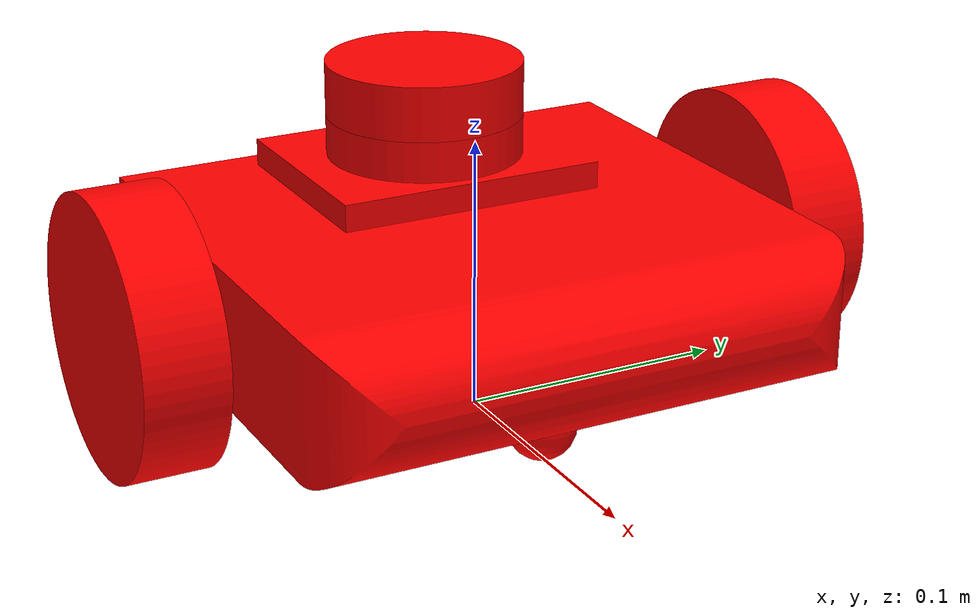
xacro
<?xml version="1.0" ?>
<robot name="ROS" xmlns:xacro="http://www.ros.org/wiki/xacro">

<xacro:include filename="$(find ROS_description)/urdf/materials.xacro" />
<xacro:include filename="$(find ROS_description)/urdf/ROS.trans" />
<xacro:include filename="$(find ROS_description)/urdf/ROS.gazebo" />
<link name="base_link">
  <inertial>
    <origin xyz="-0.004334391860998321 -0.0005636448423668676 0.05223478787909594" rpy="0 0 0"/>
    <mass value="2.107074069849857"/>
    <inertia ixx="0.007185" iyy="0.006854" izz="0.012877" ixy="3e-06" iyz="-3e-06" ixz="0.000201"/>
  </inertial>
  <visual>
    <origin xyz="0 0 0" rpy="0 0 0"/>
    <geometry>
      <mesh filename="file://$(find ROS_description)/meshes/base_link.stl" scale="0.001 0.001 0.001"/>
    </geometry>
    <material name="silver"/>
  </visual>
  <collision>
    <origin xyz="0 0 0" rpy="0 0 0"/>
    <geometry>
      <mesh filename="file://$(find ROS_description)/meshes/base_link.stl" scale="0.001 0.001 0.001"/>
    </geometry>
  </collision>
</link>

<link name="left_link_1">
  <inertial>
    <origin xyz="4.5070576519968403e-07 0.015000062845261536 6.938893903907228e-18" rpy="0 0 0"/>
    <mass value="1.8496126748009902"/>
    <inertia ixx="0.001295" iyy="0.002312" izz="0.001295" ixy="0.0" iyz="0.0" ixz="0.0"/>
  </inertial>
  <visual>
    <origin xyz="0.007669 -0.109356 -0.05" rpy="0 0 0"/>
    <geometry>
      <mesh filename="file://$(find ROS_description)/meshes/left_link_1.stl" scale="0.001 0.001 0.001"/>
    </geometry>
    <material name="silver"/>
  </visual>
  <collision>
    <origin xyz="0.007669 -0.109356 -0.05" rpy="0 0 0"/>
    <geometry>
      <mesh filename="file://$(find ROS_description)/meshes/left_link_1.stl" scale="0.001 0.001 0.001"/>
    </geometry>
  </collision>
</link>

<link name="right_link_1">
  <inertial>
    <origin xyz="4.5070576519968403e-07 -0.015000062845261564 6.938893903907228e-18" rpy="0 0 0"/>
    <mass value="1.8496126748009902"/>
    <inertia ixx="0.001295" iyy="0.002312" izz="0.001295" ixy="0.0" iyz="0.0" ixz="0.0"/>
  </inertial>
  <visual>
    <origin xyz="0.007669 0.109356 -0.05" rpy="0 0 0"/>
    <geometry>
      <mesh filename="file://$(find ROS_description)/meshes/right_link_1.stl" scale="0.001 0.001 0.001"/>
    </geometry>
    <material name="silver"/>
  </visual>
  <collision>
    <origin xyz="0.007669 0.109356 -0.05" rpy="0 0 0"/>
    <geometry>
      <mesh filename="file://$(find ROS_description)/meshes/right_link_1.stl" scale="0.001 0.001 0.001"/>
    </geometry>
  </collision>
</link>

<link name="lidar_1">
  <inertial>
    <origin xyz="-6.938893903907228e-18 -6.959162379954361e-18 0.009999999999999995" rpy="0 0 0"/>
    <mass value="0.08290663012823465"/>
    <inertia ixx="3e-05" iyy="3e-05" izz="5.4e-05" ixy="-0.0" iyz="-0.0" ixz="-0.0"/>
  </inertial>
  <visual>
    <origin xyz="0.04 -0.0 -0.1" rpy="0 0 0"/>
    <geometry>
      <mesh filename="file://$(find ROS_description)/meshes/lidar_1.stl" scale="0.001 0.001 0.001"/>
    </geometry>
    <material name="silver"/>
  </visual>
  <collision>
    <origin xyz="0.04 -0.0 -0.1" rpy="0 0 0"/>
    <geometry>
      <mesh filename="file://$(find ROS_description)/meshes/lidar_1.stl" scale="0.001 0.001 0.001"/>
    </geometry>
  </collision>
</link>

<joint name="wheel_left_joint" type="continuous">
  <origin xyz="-0.007669 0.109356 0.05" rpy="0 0 0"/>
  <parent link="base_link"/>
  <child link="left_link_1"/>
  <axis xyz="0.0 1.0 0.0"/>
</joint>

<joint name="wheel_right_joint" type="continuous">
  <origin xyz="-0.007669 -0.109356 0.05" rpy="0 0 0"/>
  <parent link="base_link"/>
  <child link="right_link_1"/>
  <axis xyz="0.0 -1.0 0.0"/>
</joint>

<joint name="lidar_joint" type="fixed">
  <origin xyz="-0.04 0.0 0.1" rpy="0 0 0"/>
  <parent link="base_link"/>
  <child link="lidar_1"/>
  <axis xyz="0.0 0.0 1.0"/>
</joint>

<gazebo>
    <plugin filename="libgazebo_ros_diff_drive.so" name="gazebo_base_controller">
      <odometry_frame>odom</odometry_frame>
      <commandTopic>cmd_vel</commandTopic>
      <publish_odom>true</publish_odom>
      <publish_odom_tf>true</publish_odom_tf>
      <update_rate>15.0</update_rate>

      <left_joint>wheel_left_joint</left_joint>
      <right_joint>wheel_right_joint</right_joint>

      <wheel_separation>0.5</wheel_separation>
      <wheel_diameter>0.3</wheel_diameter>
      <max_wheel_acceleration>0.7</max_wheel_acceleration>
      <max_wheel_torque>8</max_wheel_torque>
      <robotBaseFrame>base_link</robotBaseFrame>
    </plugin>
</gazebo>

<!--lidar plugin-->
    <gazebo reference="lidar_1">
      <sensor name="lidar_1" type="ray">
        <visualize>true</visualize>
        <update_rate>12.0</update_rate>
        <plugin filename="libgazebo_ros_ray_sensor.so" name="gazebo_lidar">
        <output_type>sensor_msgs/LaserScan</output_type>
        <frame_name>lidar</frame_name>
        </plugin>
        <ray>
          <scan>
            <horizontal>
              <samples>360</samples>
              <resolution>1</resolution>
              <min_angle>0.00</min_angle>
              <max_angle>3.14</max_angle>
            </horizontal>
          </scan>
          <range>
            <min>0.120</min>
            <max>3.5</max>
            <resolution>0.015</resolution>
          </range>
        </ray>
      </sensor>
    </gazebo>

</robot>

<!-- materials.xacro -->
<robot name="ROS" xmlns:xacro="http://www.ros.org/wiki/xacro" >

<material name="silver">
  <color rgba="1.0 0.0 0.0 1.000"/>
</material>
<material name="gold">
  <color rgba="0.0 0.16 1.0 1.000"/>
</material>

</robot>

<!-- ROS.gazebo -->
<robot name="ROS" xmlns:xacro="http://www.ros.org/wiki/xacro" >

<!-- Define individual colors for each link -->
<xacro:property name="base_link_color" value="Gazebo/Red" />
<xacro:property name="left_link_1_color" value="Gazebo/Blue" />
<xacro:property name="right_link_1_color" value="Gazebo/Blue" />
<xacro:property name="lidar_1_color" value="Gazebo/Yellow" />

<gazebo>
  <plugin name="control" filename="libgazebo_ros_control.so"/>
</gazebo>

<!-- Use the individual color for each link -->
<gazebo reference="base_link">
  <material>${base_link_color}</material>
  <mu1>0.2</mu1>
  <mu2>0.2</mu2>
  <self_collide>true</self_collide>
  <gravity>true</gravity>
</gazebo>

<gazebo reference="left_link_1">
  <material>${left_link_1_color}</material>
  <mu1>0.2</mu1>
  <mu2>0.2</mu2>
  <self_collide>true</self_collide>
</gazebo>

<gazebo reference="right_link_1">
  <material>${right_link_1_color}</material>
  <mu1>0.2</mu1>
  <mu2>0.2</mu2>
  <self_collide>true</self_collide>
</gazebo>

<gazebo reference="lidar_1">
  <material>${lidar_1_color}</material>
  <mu1>0.2</mu1>
  <mu2>0.2</mu2>
  <self_collide>true</self_collide>
</gazebo>

</robot>
